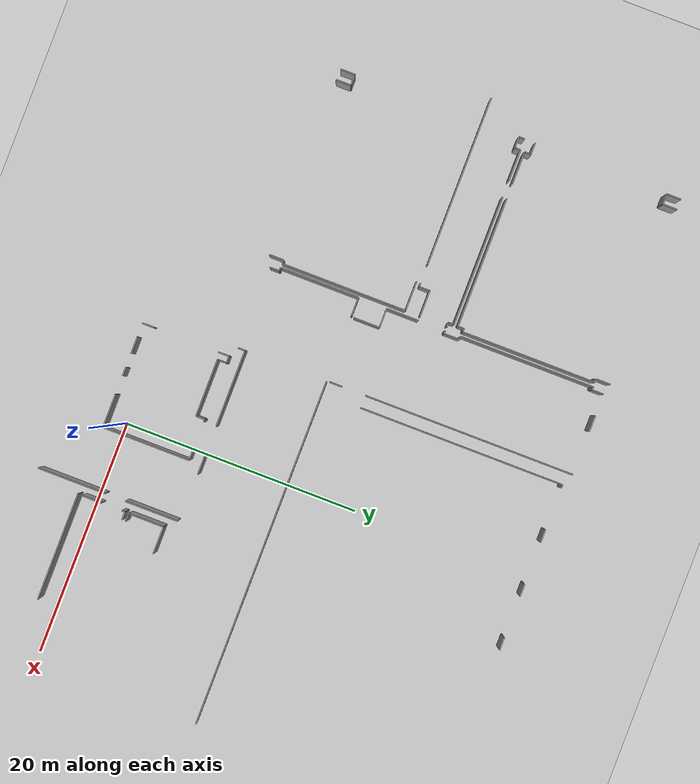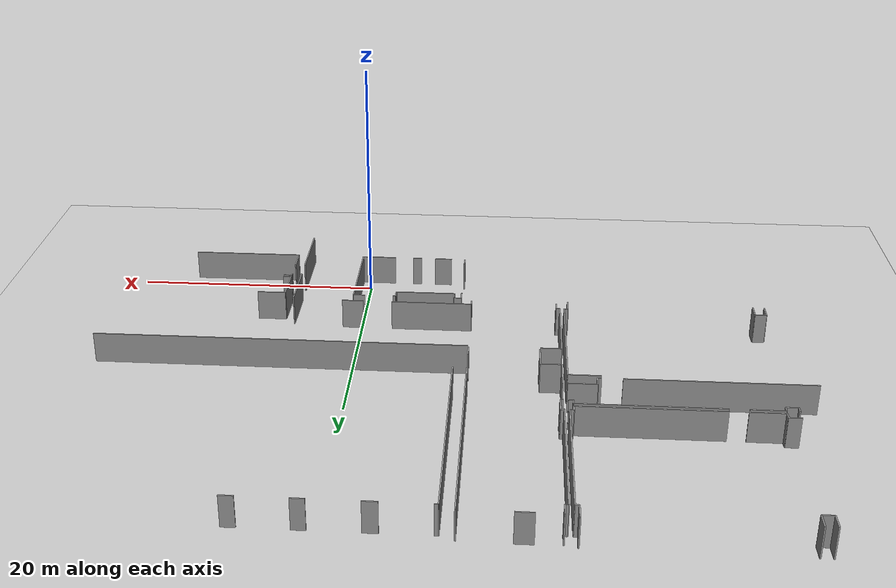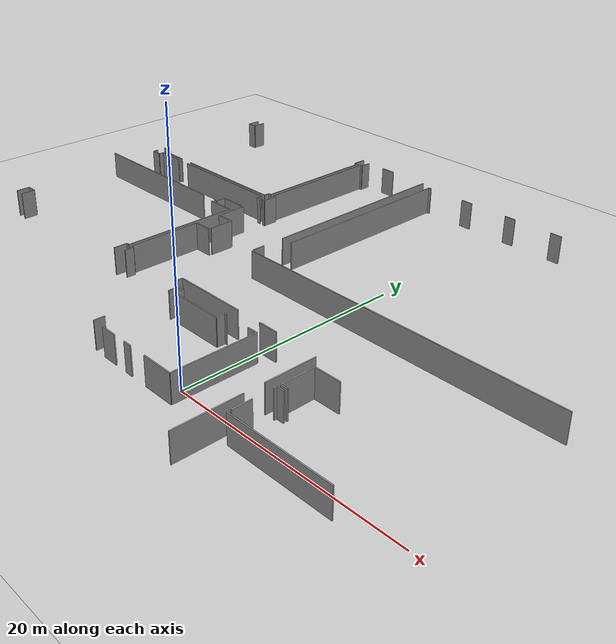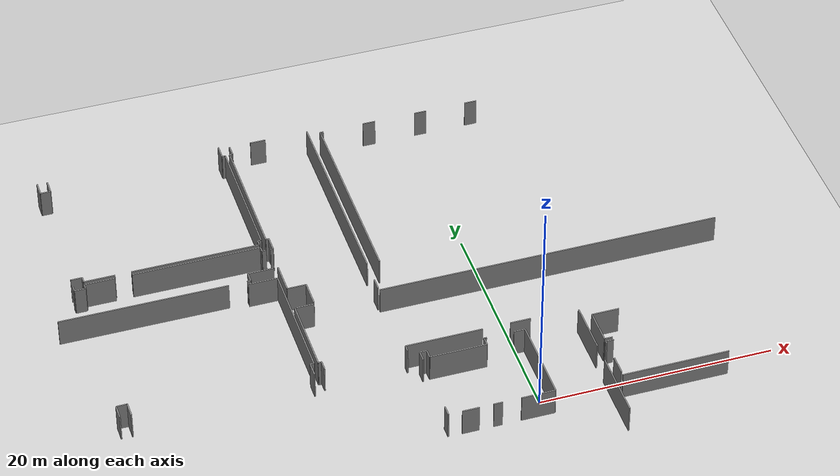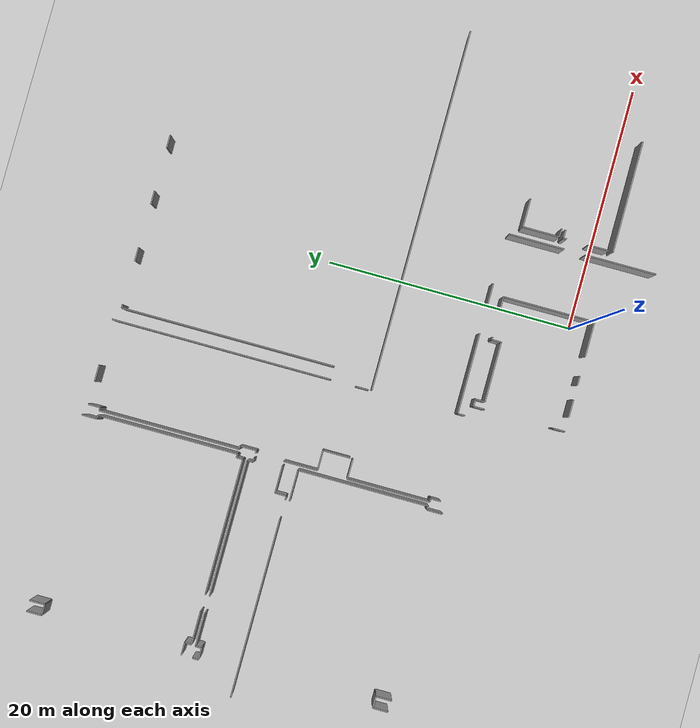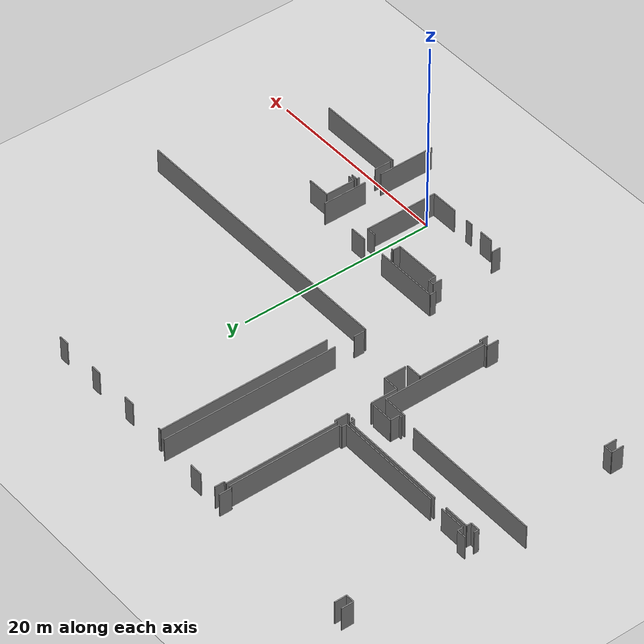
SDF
<sdf version="1.6">
 <world name="default">
  <model name="ground_plane">
   <static>1</static>
   <link name="link">
    <collision name="collision">
     <geometry><plane><normal>0 0 1</normal><size>100 100</size></plane></geometry>
     <surface><friction><ode><mu>100</mu><mu2>50</mu2></ode></friction></surface>
    </collision>
    <visual name="visual">
     <cast_shadows>0</cast_shadows>
     <geometry><plane><normal>0 0 1</normal><size>100 100</size></plane></geometry>
     <material>
      <script><uri>file://media/materials/scripts/gazebo.material</uri><name>Gazebo/Grey</name></script>
     </material>
    </visual>
   </link>
  </model>
  <model name="0510035741_A_40_1_104">
   <static>1</static>
   <link name="Wall_119">
    <collision name="Wall_119_Collision">
     <geometry><box><size>0.495551844349 0.1 2.5</size></box></geometry>
     <pose>0.247775922175 0 1.25 0 0 0</pose>
    </collision>
    <visual name="Wall_119_Visual">
     <pose>0.247775922175 0 1.25 0 0 0</pose>
     <geometry><box><size>0.495551844349 0.1 2.5</size></box></geometry>
     <material>
      <script><uri>file://media/materials/scripts/gazebo.material</uri><name>Gazebo/Grey</name></script>
      <ambient>1 1 1 1</ambient>
     </material>
    </visual>
    <pose>60.9208729942 -27.5969799531 0 0 0 -1.57079632679</pose>
   </link>
   <link name="Wall_120">
    <collision name="Wall_120_Collision">
     <geometry><box><size>0.94639988316 0.1 2.5</size></box></geometry>
     <pose>0.47319994158 0 1.25 0 0 0</pose>
    </collision>
    <visual name="Wall_120_Visual">
     <pose>0.47319994158 0 1.25 0 0 0</pose>
     <geometry><box><size>0.94639988316 0.1 2.5</size></box></geometry>
     <material>
      <script><uri>file://media/materials/scripts/gazebo.material</uri><name>Gazebo/Grey</name></script>
      <ambient>1 1 1 1</ambient>
     </material>
    </visual>
    <pose>60.9208729942 -28.0925317975 0 0 0 0.0</pose>
   </link>
   <link name="Wall_121">
    <collision name="Wall_121_Collision">
     <geometry><box><size>0.489963868657 0.1 2.5</size></box></geometry>
     <pose>0.244981934329 0 1.25 0 0 0</pose>
    </collision>
    <visual name="Wall_121_Visual">
     <pose>0.244981934329 0 1.25 0 0 0</pose>
     <geometry><box><size>0.489963868657 0.1 2.5</size></box></geometry>
     <material>
      <script><uri>file://media/materials/scripts/gazebo.material</uri><name>Gazebo/Grey</name></script>
      <ambient>1 1 1 1</ambient>
     </material>
    </visual>
    <pose>61.8672728774 -28.0925317975 0 0 0 1.57079632679</pose>
   </link>
   <link name="Wall_122">
    <collision name="Wall_122_Collision">
     <geometry><box><size>2.58240676653 0.1 2.5</size></box></geometry>
     <pose>1.29120338327 0 1.25 0 0 0</pose>
    </collision>
    <visual name="Wall_122_Visual">
     <pose>1.29120338327 0 1.25 0 0 0</pose>
     <geometry><box><size>2.58240676653 0.1 2.5</size></box></geometry>
     <material>
      <script><uri>file://media/materials/scripts/gazebo.material</uri><name>Gazebo/Grey</name></script>
      <ambient>1 1 1 1</ambient>
     </material>
    </visual>
    <pose>61.8672728774 -27.6025679288 0 0 0 0.0</pose>
   </link>
   <link name="Wall_123">
    <collision name="Wall_123_Collision">
     <geometry><box><size>11.022536052 0.1 2.5</size></box></geometry>
     <pose>5.51126802598 0 1.25 0 0 0</pose>
    </collision>
    <visual name="Wall_123_Visual">
     <pose>5.51126802598 0 1.25 0 0 0</pose>
     <geometry><box><size>11.022536052 0.1 2.5</size></box></geometry>
     <material>
      <script><uri>file://media/materials/scripts/gazebo.material</uri><name>Gazebo/Grey</name></script>
      <ambient>1 1 1 1</ambient>
     </material>
    </visual>
    <pose>65.914491272 -27.6025679288 0 0 0 0.0</pose>
   </link>
   <link name="Wall_124">
    <collision name="Wall_124_Collision">
     <geometry><box><size>0.47319994158 0.1 2.5</size></box></geometry>
     <pose>0.23659997079 0 1.25 0 0 0</pose>
    </collision>
    <visual name="Wall_124_Visual">
     <pose>0.23659997079 0 1.25 0 0 0</pose>
     <geometry><box><size>0.47319994158 0.1 2.5</size></box></geometry>
     <material>
      <script><uri>file://media/materials/scripts/gazebo.material</uri><name>Gazebo/Grey</name></script>
      <ambient>1 1 1 1</ambient>
     </material>
    </visual>
    <pose>76.9370273239 -27.6025679288 0 0 0 -1.57079632679</pose>
   </link>
   <link name="Wall_125">
    <collision name="Wall_125_Collision">
     <geometry><box><size>0.360932429944 0.1 2.5</size></box></geometry>
     <pose>0.180466214972 0 1.25 0 0 0</pose>
    </collision>
    <visual name="Wall_125_Visual">
     <pose>0.180466214972 0 1.25 0 0 0</pose>
     <geometry><box><size>0.360932429944 0.1 2.5</size></box></geometry>
     <material>
      <script><uri>file://media/materials/scripts/gazebo.material</uri><name>Gazebo/Grey</name></script>
      <ambient>1 1 1 1</ambient>
     </material>
    </visual>
    <pose>76.9370273239 -28.0757678704 0 0 0 0.0</pose>
   </link>
   <link name="Wall_126">
    <collision name="Wall_126_Collision">
     <geometry><box><size>2.22198233438 0.1 2.5</size></box></geometry>
     <pose>1.11099116719 0 1.25 0 0 0</pose>
    </collision>
    <visual name="Wall_126_Visual">
     <pose>1.11099116719 0 1.25 0 0 0</pose>
     <geometry><box><size>2.22198233438 0.1 2.5</size></box></geometry>
     <material>
      <script><uri>file://media/materials/scripts/gazebo.material</uri><name>Gazebo/Grey</name></script>
      <ambient>1 1 1 1</ambient>
     </material>
    </visual>
    <pose>77.2979597539 -30.3993497628 0 0 0 3.14159265359</pose>
   </link>
   <link name="Wall_127">
    <collision name="Wall_127_Collision">
     <geometry><box><size>0.914904020168 0.1 2.5</size></box></geometry>
     <pose>0.457452010084 0 1.25 0 0 0</pose>
    </collision>
    <visual name="Wall_127_Visual">
     <pose>0.457452010084 0 1.25 0 0 0</pose>
     <geometry><box><size>0.914904020168 0.1 2.5</size></box></geometry>
     <material>
      <script><uri>file://media/materials/scripts/gazebo.material</uri><name>Gazebo/Grey</name></script>
      <ambient>1 1 1 1</ambient>
     </material>
    </visual>
    <pose>75.0759774195 -30.3993497628 0 0 0 -1.57079632679</pose>
   </link>
   <link name="Wall_128">
    <collision name="Wall_128_Collision">
     <geometry><box><size>0.319530610042 0.1 2.5</size></box></geometry>
     <pose>0.159765305021 0 1.25 0 0 0</pose>
    </collision>
    <visual name="Wall_128_Visual">
     <pose>0.159765305021 0 1.25 0 0 0</pose>
     <geometry><box><size>0.319530610042 0.1 2.5</size></box></geometry>
     <material>
      <script><uri>file://media/materials/scripts/gazebo.material</uri><name>Gazebo/Grey</name></script>
      <ambient>1 1 1 1</ambient>
     </material>
    </visual>
    <pose>75.0759774195 -31.314253783 0 0 0 3.14159265359</pose>
   </link>
   <link name="Wall_129">
    <collision name="Wall_129_Collision">
     <geometry><box><size>14.4121513071 0.1 2.5</size></box></geometry>
     <pose>7.20607565357 0 1.25 0 0 0</pose>
    </collision>
    <visual name="Wall_129_Visual">
     <pose>7.20607565357 0 1.25 0 0 0</pose>
     <geometry><box><size>14.4121513071 0.1 2.5</size></box></geometry>
     <material>
      <script><uri>file://media/materials/scripts/gazebo.material</uri><name>Gazebo/Grey</name></script>
      <ambient>1 1 1 1</ambient>
     </material>
    </visual>
    <pose>73.1793676698 -31.314253783 0 0 0 3.14159265359</pose>
   </link>
   <link name="Wall_141">
    <collision name="Wall_141_Collision">
     <geometry><box><size>2.51306506817 0.1 2.5</size></box></geometry>
     <pose>1.25653253408 0 1.25 0 0 0</pose>
    </collision>
    <visual name="Wall_141_Visual">
     <pose>1.25653253408 0 1.25 0 0 0</pose>
     <geometry><box><size>2.51306506817 0.1 2.5</size></box></geometry>
     <material>
      <script><uri>file://media/materials/scripts/gazebo.material</uri><name>Gazebo/Grey</name></script>
      <ambient>1 1 1 1</ambient>
     </material>
    </visual>
    <pose>74.7589867984 -31.6589302837 0 0 0 0.0</pose>
   </link>
   <link name="Wall_142">
    <collision name="Wall_142_Collision">
     <geometry><box><size>10.6336637436 0.1 2.5</size></box></geometry>
     <pose>5.31683187178 0 1.25 0 0 0</pose>
    </collision>
    <visual name="Wall_142_Visual">
     <pose>5.31683187178 0 1.25 0 0 0</pose>
     <geometry><box><size>10.6336637436 0.1 2.5</size></box></geometry>
     <material>
      <script><uri>file://media/materials/scripts/gazebo.material</uri><name>Gazebo/Grey</name></script>
      <ambient>1 1 1 1</ambient>
     </material>
    </visual>
    <pose>77.2720518666 -31.6589302837 0 0 0 -1.57079632679</pose>
   </link>
   <link name="Wall_143">
    <collision name="Wall_143_Collision">
     <geometry><box><size>0.308100659762 0.1 2.5</size></box></geometry>
     <pose>0.154050329881 0 1.25 0 0 0</pose>
    </collision>
    <visual name="Wall_143_Visual">
     <pose>0.154050329881 0 1.25 0 0 0</pose>
     <geometry><box><size>0.308100659762 0.1 2.5</size></box></geometry>
     <material>
      <script><uri>file://media/materials/scripts/gazebo.material</uri><name>Gazebo/Grey</name></script>
      <ambient>1 1 1 1</ambient>
     </material>
    </visual>
    <pose>77.2720518666 -42.2925940272 0 0 0 3.14159265359</pose>
   </link>
   <link name="Wall_144">
    <collision name="Wall_144_Collision">
     <geometry><box><size>1.234942628 0.1 2.5</size></box></geometry>
     <pose>0.617471314 0 1.25 0 0 0</pose>
    </collision>
    <visual name="Wall_144_Visual">
     <pose>0.617471314 0 1.25 0 0 0</pose>
     <geometry><box><size>1.234942628 0.1 2.5</size></box></geometry>
     <material>
      <script><uri>file://media/materials/scripts/gazebo.material</uri><name>Gazebo/Grey</name></script>
      <ambient>1 1 1 1</ambient>
     </material>
    </visual>
    <pose>76.9639512068 -42.2925940272 0 0 0 -1.57079632679</pose>
   </link>
   <link name="Wall_145">
    <collision name="Wall_145_Collision">
     <geometry><box><size>1.27786844127 0.1 2.5</size></box></geometry>
     <pose>0.638934220636 0 1.25 0 0 0</pose>
    </collision>
    <visual name="Wall_145_Visual">
     <pose>0.638934220636 0 1.25 0 0 0</pose>
     <geometry><box><size>1.27786844127 0.1 2.5</size></box></geometry>
     <material>
      <script><uri>file://media/materials/scripts/gazebo.material</uri><name>Gazebo/Grey</name></script>
      <ambient>1 1 1 1</ambient>
     </material>
    </visual>
    <pose>61.8672728774 -43.5275366552 0 0 0 1.57079632679</pose>
   </link>
   <link name="Wall_146">
    <collision name="Wall_146_Collision">
     <geometry><box><size>0.92150799144 0.1 2.5</size></box></geometry>
     <pose>0.46075399572 0 1.25 0 0 0</pose>
    </collision>
    <visual name="Wall_146_Visual">
     <pose>0.46075399572 0 1.25 0 0 0</pose>
     <geometry><box><size>0.92150799144 0.1 2.5</size></box></geometry>
     <material>
      <script><uri>file://media/materials/scripts/gazebo.material</uri><name>Gazebo/Grey</name></script>
      <ambient>1 1 1 1</ambient>
     </material>
    </visual>
    <pose>61.8672728774 -42.2496682139 0 0 0 3.14159265359</pose>
   </link>
   <link name="Wall_147">
    <collision name="Wall_147_Collision">
     <geometry><box><size>1.23722861806 0.1 2.5</size></box></geometry>
     <pose>0.618614309028 0 1.25 0 0 0</pose>
    </collision>
    <visual name="Wall_147_Visual">
     <pose>0.618614309028 0 1.25 0 0 0</pose>
     <geometry><box><size>1.23722861806 0.1 2.5</size></box></geometry>
     <material>
      <script><uri>file://media/materials/scripts/gazebo.material</uri><name>Gazebo/Grey</name></script>
      <ambient>1 1 1 1</ambient>
     </material>
    </visual>
    <pose>60.9457648859 -42.2496682139 0 0 0 -1.57079632679</pose>
   </link>
   <link name="Wall_165">
    <collision name="Wall_165_Collision">
     <geometry><box><size>1.2298626501 0.1 2.5</size></box></geometry>
     <pose>0.614931325049 0 1.25 0 0 0</pose>
    </collision>
    <visual name="Wall_165_Visual">
     <pose>0.614931325049 0 1.25 0 0 0</pose>
     <geometry><box><size>1.2298626501 0.1 2.5</size></box></geometry>
     <material>
      <script><uri>file://media/materials/scripts/gazebo.material</uri><name>Gazebo/Grey</name></script>
      <ambient>1 1 1 1</ambient>
     </material>
    </visual>
    <pose>60.9805627346 -14.090334707 0 0 0 -1.57079632679</pose>
   </link>
   <link name="Wall_166">
    <collision name="Wall_166_Collision">
     <geometry><box><size>0.878582178168 0.1 2.5</size></box></geometry>
     <pose>0.439291089084 0 1.25 0 0 0</pose>
    </collision>
    <visual name="Wall_166_Visual">
     <pose>0.439291089084 0 1.25 0 0 0</pose>
     <geometry><box><size>0.878582178168 0.1 2.5</size></box></geometry>
     <material>
      <script><uri>file://media/materials/scripts/gazebo.material</uri><name>Gazebo/Grey</name></script>
      <ambient>1 1 1 1</ambient>
     </material>
    </visual>
    <pose>60.9805627346 -15.3201973571 0 0 0 0.0</pose>
   </link>
   <link name="Wall_167">
    <collision name="Wall_167_Collision">
     <geometry><box><size>1.2298626501 0.1 2.5</size></box></geometry>
     <pose>0.614931325049 0 1.25 0 0 0</pose>
    </collision>
    <visual name="Wall_167_Visual">
     <pose>0.614931325049 0 1.25 0 0 0</pose>
     <geometry><box><size>1.2298626501 0.1 2.5</size></box></geometry>
     <material>
      <script><uri>file://media/materials/scripts/gazebo.material</uri><name>Gazebo/Grey</name></script>
      <ambient>1 1 1 1</ambient>
     </material>
    </visual>
    <pose>61.8591449127 -15.3201973571 0 0 0 1.57079632679</pose>
   </link>
   <link name="Wall_168">
    <collision name="Wall_168_Collision">
     <geometry><box><size>1.24154659927 0.1 2.5</size></box></geometry>
     <pose>0.620773299636 0 1.25 0 0 0</pose>
    </collision>
    <visual name="Wall_168_Visual">
     <pose>0.620773299636 0 1.25 0 0 0</pose>
     <geometry><box><size>1.24154659927 0.1 2.5</size></box></geometry>
     <material>
      <script><uri>file://media/materials/scripts/gazebo.material</uri><name>Gazebo/Grey</name></script>
      <ambient>1 1 1 1</ambient>
     </material>
    </visual>
    <pose>76.9487112731 -14.090334707 0 0 0 -1.57079632679</pose>
   </link>
   <link name="Wall_169">
    <collision name="Wall_169_Collision">
     <geometry><box><size>0.288796743734 0.1 2.5</size></box></geometry>
     <pose>0.144398371867 0 1.25 0 0 0</pose>
    </collision>
    <visual name="Wall_169_Visual">
     <pose>0.144398371867 0 1.25 0 0 0</pose>
     <geometry><box><size>0.288796743734 0.1 2.5</size></box></geometry>
     <material>
      <script><uri>file://media/materials/scripts/gazebo.material</uri><name>Gazebo/Grey</name></script>
      <ambient>1 1 1 1</ambient>
     </material>
    </visual>
    <pose>76.9487112731 -15.3318813063 0 0 0 0.0</pose>
   </link>
   <link name="Wall_170">
    <collision name="Wall_170_Collision">
     <geometry><box><size>11.4015024035 0.1 2.5</size></box></geometry>
     <pose>5.70075120173 0 1.25 0 0 0</pose>
    </collision>
    <visual name="Wall_170_Visual">
     <pose>5.70075120173 0 1.25 0 0 0</pose>
     <geometry><box><size>11.4015024035 0.1 2.5</size></box></geometry>
     <material>
      <script><uri>file://media/materials/scripts/gazebo.material</uri><name>Gazebo/Grey</name></script>
      <ambient>1 1 1 1</ambient>
     </material>
    </visual>
    <pose>77.2375080168 -15.3318813063 0 0 0 -1.57079632679</pose>
   </link>
   <link name="Wall_171">
    <collision name="Wall_171_Collision">
     <geometry><box><size>0.291336732685 0.1 2.5</size></box></geometry>
     <pose>0.145668366343 0 1.25 0 0 0</pose>
    </collision>
    <visual name="Wall_171_Visual">
     <pose>0.145668366343 0 1.25 0 0 0</pose>
     <geometry><box><size>0.291336732685 0.1 2.5</size></box></geometry>
     <material>
      <script><uri>file://media/materials/scripts/gazebo.material</uri><name>Gazebo/Grey</name></script>
      <ambient>1 1 1 1</ambient>
     </material>
    </visual>
    <pose>77.2375080168 -26.7333837098 0 0 0 3.14159265359</pose>
   </link>
   <link name="Wall_172">
    <collision name="Wall_172_Collision">
     <geometry><box><size>0.515617757063 0.1 2.5</size></box></geometry>
     <pose>0.257808878531 0 1.25 0 0 0</pose>
    </collision>
    <visual name="Wall_172_Visual">
     <pose>0.257808878531 0 1.25 0 0 0</pose>
     <geometry><box><size>0.515617757063 0.1 2.5</size></box></geometry>
     <material>
      <script><uri>file://media/materials/scripts/gazebo.material</uri><name>Gazebo/Grey</name></script>
      <ambient>1 1 1 1</ambient>
     </material>
    </visual>
    <pose>76.9461712842 -26.7333837098 0 0 0 -1.57079632679</pose>
   </link>
   <link name="Wall_173">
    <collision name="Wall_173_Collision">
     <geometry><box><size>11.0019621415 0.1 2.5</size></box></geometry>
     <pose>5.50098107073 0 1.25 0 0 0</pose>
    </collision>
    <visual name="Wall_173_Visual">
     <pose>5.50098107073 0 1.25 0 0 0</pose>
     <geometry><box><size>11.0019621415 0.1 2.5</size></box></geometry>
     <material>
      <script><uri>file://media/materials/scripts/gazebo.material</uri><name>Gazebo/Grey</name></script>
      <ambient>1 1 1 1</ambient>
     </material>
    </visual>
    <pose>76.9461712842 -27.2490014668 0 0 0 3.14159265359</pose>
   </link>
   <link name="Wall_174">
    <collision name="Wall_174_Collision">
     <geometry><box><size>2.65733644059 0.1 2.5</size></box></geometry>
     <pose>1.32866822029 0 1.25 0 0 0</pose>
    </collision>
    <visual name="Wall_174_Visual">
     <pose>1.32866822029 0 1.25 0 0 0</pose>
     <geometry><box><size>2.65733644059 0.1 2.5</size></box></geometry>
     <material>
      <script><uri>file://media/materials/scripts/gazebo.material</uri><name>Gazebo/Grey</name></script>
      <ambient>1 1 1 1</ambient>
     </material>
    </visual>
    <pose>64.5604231622 -27.2490014668 0 0 0 3.14159265359</pose>
   </link>
   <link name="Wall_175">
    <collision name="Wall_175_Collision">
     <geometry><box><size>0.541525644363 0.1 2.5</size></box></geometry>
     <pose>0.270762822182 0 1.25 0 0 0</pose>
    </collision>
    <visual name="Wall_175_Visual">
     <pose>0.270762822182 0 1.25 0 0 0</pose>
     <geometry><box><size>0.541525644363 0.1 2.5</size></box></geometry>
     <material>
      <script><uri>file://media/materials/scripts/gazebo.material</uri><name>Gazebo/Grey</name></script>
      <ambient>1 1 1 1</ambient>
     </material>
    </visual>
    <pose>61.9030867216 -27.2490014668 0 0 0 1.57079632679</pose>
   </link>
   <link name="Wall_176">
    <collision name="Wall_176_Collision">
     <geometry><box><size>0.988309700853 0.1 2.5</size></box></geometry>
     <pose>0.494154850426 0 1.25 0 0 0</pose>
    </collision>
    <visual name="Wall_176_Visual">
     <pose>0.494154850426 0 1.25 0 0 0</pose>
     <geometry><box><size>0.988309700853 0.1 2.5</size></box></geometry>
     <material>
      <script><uri>file://media/materials/scripts/gazebo.material</uri><name>Gazebo/Grey</name></script>
      <ambient>1 1 1 1</ambient>
     </material>
    </visual>
    <pose>61.9030867216 -26.7074758225 0 0 0 3.14159265359</pose>
   </link>
   <link name="Wall_180">
    <collision name="Wall_180_Collision">
     <geometry><box><size>2.22122033769 0.1 2.5</size></box></geometry>
     <pose>1.11061016885 0 1.25 0 0 0</pose>
    </collision>
    <visual name="Wall_180_Visual">
     <pose>1.11061016885 0 1.25 0 0 0</pose>
     <geometry><box><size>2.22122033769 0.1 2.5</size></box></geometry>
     <material>
      <script><uri>file://media/materials/scripts/gazebo.material</uri><name>Gazebo/Grey</name></script>
      <ambient>1 1 1 1</ambient>
     </material>
    </visual>
    <pose>79.2918510804 -35.3543602085 0 0 0 1.57079632679</pose>
   </link>
   <link name="Wall_181">
    <collision name="Wall_181_Collision">
     <geometry><box><size>1.63651488116 0.1 2.5</size></box></geometry>
     <pose>0.81825744058 0 1.25 0 0 0</pose>
    </collision>
    <visual name="Wall_181_Visual">
     <pose>0.81825744058 0 1.25 0 0 0</pose>
     <geometry><box><size>1.63651488116 0.1 2.5</size></box></geometry>
     <material>
      <script><uri>file://media/materials/scripts/gazebo.material</uri><name>Gazebo/Grey</name></script>
      <ambient>1 1 1 1</ambient>
     </material>
    </visual>
    <pose>79.2918510804 -33.1331398708 0 0 0 3.14159265359</pose>
   </link>
   <link name="Wall_182">
    <collision name="Wall_182_Collision">
     <geometry><box><size>2.73887008592 0.1 2.5</size></box></geometry>
     <pose>1.36943504296 0 1.25 0 0 0</pose>
    </collision>
    <visual name="Wall_182_Visual">
     <pose>1.36943504296 0 1.25 0 0 0</pose>
     <geometry><box><size>2.73887008592 0.1 2.5</size></box></geometry>
     <material>
      <script><uri>file://media/materials/scripts/gazebo.material</uri><name>Gazebo/Grey</name></script>
      <ambient>1 1 1 1</ambient>
     </material>
    </visual>
    <pose>77.6553361993 -33.1331398708 0 0 0 1.57079632679</pose>
   </link>
   <link name="Wall_183">
    <collision name="Wall_183_Collision">
     <geometry><box><size>0.236218972447 0.1 2.5</size></box></geometry>
     <pose>0.118109486224 0 1.25 0 0 0</pose>
    </collision>
    <visual name="Wall_183_Visual">
     <pose>0.118109486224 0 1.25 0 0 0</pose>
     <geometry><box><size>0.236218972447 0.1 2.5</size></box></geometry>
     <material>
      <script><uri>file://media/materials/scripts/gazebo.material</uri><name>Gazebo/Grey</name></script>
      <ambient>1 1 1 1</ambient>
     </material>
    </visual>
    <pose>77.6553361993 -28.0993897677 0 0 0 0.0</pose>
   </link>
   <link name="Wall_184">
    <collision name="Wall_184_Collision">
     <geometry><box><size>1.34441615179 0.1 2.5</size></box></geometry>
     <pose>0.672208075895 0 1.25 0 0 0</pose>
    </collision>
    <visual name="Wall_184_Visual">
     <pose>0.672208075895 0 1.25 0 0 0</pose>
     <geometry><box><size>1.34441615179 0.1 2.5</size></box></geometry>
     <material>
      <script><uri>file://media/materials/scripts/gazebo.material</uri><name>Gazebo/Grey</name></script>
      <ambient>1 1 1 1</ambient>
     </material>
    </visual>
    <pose>77.8915551717 -28.0993897677 0 0 0 1.57079632679</pose>
   </link>
   <link name="Wall_185">
    <collision name="Wall_185_Collision">
     <geometry><box><size>0.265936843175 0.1 2.5</size></box></geometry>
     <pose>0.132968421587 0 1.25 0 0 0</pose>
    </collision>
    <visual name="Wall_185_Visual">
     <pose>0.132968421587 0 1.25 0 0 0</pose>
     <geometry><box><size>0.265936843175 0.1 2.5</size></box></geometry>
     <material>
      <script><uri>file://media/materials/scripts/gazebo.material</uri><name>Gazebo/Grey</name></script>
      <ambient>1 1 1 1</ambient>
     </material>
    </visual>
    <pose>77.8915551717 -26.7549736159 0 0 0 3.14159265359</pose>
   </link>
   <link name="Wall_186">
    <collision name="Wall_186_Collision">
     <geometry><box><size>11.4324902687 0.1 2.5</size></box></geometry>
     <pose>5.71624513433 0 1.25 0 0 0</pose>
    </collision>
    <visual name="Wall_186_Visual">
     <pose>5.71624513433 0 1.25 0 0 0</pose>
     <geometry><box><size>11.4324902687 0.1 2.5</size></box></geometry>
     <material>
      <script><uri>file://media/materials/scripts/gazebo.material</uri><name>Gazebo/Grey</name></script>
      <ambient>1 1 1 1</ambient>
     </material>
    </visual>
    <pose>77.6256183286 -26.7549736159 0 0 0 1.57079632679</pose>
   </link>
   <link name="Wall_187">
    <collision name="Wall_187_Collision">
     <geometry><box><size>0.256284885161 0.1 2.5</size></box></geometry>
     <pose>0.12814244258 0 1.25 0 0 0</pose>
    </collision>
    <visual name="Wall_187_Visual">
     <pose>0.12814244258 0 1.25 0 0 0</pose>
     <geometry><box><size>0.256284885161 0.1 2.5</size></box></geometry>
     <material>
      <script><uri>file://media/materials/scripts/gazebo.material</uri><name>Gazebo/Grey</name></script>
      <ambient>1 1 1 1</ambient>
     </material>
    </visual>
    <pose>77.6256183286 -15.3224833472 0 0 0 0.0</pose>
   </link>
   <link name="Wall_188">
    <collision name="Wall_188_Collision">
     <geometry><box><size>0.973831763832 0.1 2.5</size></box></geometry>
     <pose>0.486915881916 0 1.25 0 0 0</pose>
    </collision>
    <visual name="Wall_188_Visual">
     <pose>0.486915881916 0 1.25 0 0 0</pose>
     <geometry><box><size>0.973831763832 0.1 2.5</size></box></geometry>
     <material>
      <script><uri>file://media/materials/scripts/gazebo.material</uri><name>Gazebo/Grey</name></script>
      <ambient>1 1 1 1</ambient>
     </material>
    </visual>
    <pose>77.8819032137 -15.3224833472 0 0 0 1.57079632679</pose>
   </link>
   <link name="Wall_189">
    <collision name="Wall_189_Collision">
     <geometry><box><size>1.34822613522 0.1 2.5</size></box></geometry>
     <pose>0.674113067608 0 1.25 0 0 0</pose>
    </collision>
    <visual name="Wall_189_Visual">
     <pose>0.674113067608 0 1.25 0 0 0</pose>
     <geometry><box><size>1.34822613522 0.1 2.5</size></box></geometry>
     <material>
      <script><uri>file://media/materials/scripts/gazebo.material</uri><name>Gazebo/Grey</name></script>
      <ambient>1 1 1 1</ambient>
     </material>
    </visual>
    <pose>79.7343171557 -14.3486515834 0 0 0 0.0</pose>
   </link>
   <link name="Wall_190">
    <collision name="Wall_190_Collision">
     <geometry><box><size>17.879998222 0.1 2.5</size></box></geometry>
     <pose>8.939999111 0 1.25 0 0 0</pose>
    </collision>
    <visual name="Wall_190_Visual">
     <pose>8.939999111 0 1.25 0 0 0</pose>
     <geometry><box><size>17.879998222 0.1 2.5</size></box></geometry>
     <material>
      <script><uri>file://media/materials/scripts/gazebo.material</uri><name>Gazebo/Grey</name></script>
      <ambient>1 1 1 1</ambient>
     </material>
    </visual>
    <pose>84.8153110534 -14.3486515834 0 0 0 -1.57079632679</pose>
   </link>
   <link name="Wall_191">
    <collision name="Wall_191_Collision">
     <geometry><box><size>1.07466932519 0.1 2.5</size></box></geometry>
     <pose>0.537334662594 0 1.25 0 0 0</pose>
    </collision>
    <visual name="Wall_191_Visual">
     <pose>0.537334662594 0 1.25 0 0 0</pose>
     <geometry><box><size>1.07466932519 0.1 2.5</size></box></geometry>
     <material>
      <script><uri>file://media/materials/scripts/gazebo.material</uri><name>Gazebo/Grey</name></script>
      <ambient>1 1 1 1</ambient>
     </material>
    </visual>
    <pose>84.8153110534 -34.2621649596 0 0 0 -1.57079632679</pose>
   </link>
   <link name="Wall_192">
    <collision name="Wall_192_Collision">
     <geometry><box><size>17.3948603324 0.1 2.5</size></box></geometry>
     <pose>8.69743016618 0 1.25 0 0 0</pose>
    </collision>
    <visual name="Wall_192_Visual">
     <pose>8.69743016618 0 1.25 0 0 0</pose>
     <geometry><box><size>17.3948603324 0.1 2.5</size></box></geometry>
     <material>
      <script><uri>file://media/materials/scripts/gazebo.material</uri><name>Gazebo/Grey</name></script>
      <ambient>1 1 1 1</ambient>
     </material>
    </visual>
    <pose>85.8887103841 -32.2238238264 0 0 0 1.57079632679</pose>
   </link>
   <link name="Wall_193">
    <collision name="Wall_193_Collision">
     <geometry><box><size>0.283970764727 0.1 2.5</size></box></geometry>
     <pose>0.141985382364 0 1.25 0 0 0</pose>
    </collision>
    <visual name="Wall_193_Visual">
     <pose>0.141985382364 0 1.25 0 0 0</pose>
     <geometry><box><size>0.283970764727 0.1 2.5</size></box></geometry>
     <material>
      <script><uri>file://media/materials/scripts/gazebo.material</uri><name>Gazebo/Grey</name></script>
      <ambient>1 1 1 1</ambient>
     </material>
    </visual>
    <pose>85.8887103841 -14.828963494 0 0 0 0.0</pose>
   </link>
   <link name="Wall_194">
    <collision name="Wall_194_Collision">
     <geometry><box><size>1.10210120586 0.1 2.5</size></box></geometry>
     <pose>0.55105060293 0 1.25 0 0 0</pose>
    </collision>
    <visual name="Wall_194_Visual">
     <pose>0.55105060293 0 1.25 0 0 0</pose>
     <geometry><box><size>1.10210120586 0.1 2.5</size></box></geometry>
     <material>
      <script><uri>file://media/materials/scripts/gazebo.material</uri><name>Gazebo/Grey</name></script>
      <ambient>1 1 1 1</ambient>
     </material>
    </visual>
    <pose>89.7466996019 -14.828963494 0 0 0 0.0</pose>
   </link>
   <link name="Wall_195">
    <collision name="Wall_195_Collision">
     <geometry><box><size>1.03529949645 0.1 2.5</size></box></geometry>
     <pose>0.517649748224 0 1.25 0 0 0</pose>
    </collision>
    <visual name="Wall_195_Visual">
     <pose>0.517649748224 0 1.25 0 0 0</pose>
     <geometry><box><size>1.03529949645 0.1 2.5</size></box></geometry>
     <material>
      <script><uri>file://media/materials/scripts/gazebo.material</uri><name>Gazebo/Grey</name></script>
      <ambient>1 1 1 1</ambient>
     </material>
    </visual>
    <pose>94.4563471149 -14.828963494 0 0 0 0.0</pose>
   </link>
   <link name="Wall_196">
    <collision name="Wall_196_Collision">
     <geometry><box><size>1.05231742242 0.1 2.5</size></box></geometry>
     <pose>0.52615871121 0 1.25 0 0 0</pose>
    </collision>
    <visual name="Wall_196_Visual">
     <pose>0.52615871121 0 1.25 0 0 0</pose>
     <geometry><box><size>1.05231742242 0.1 2.5</size></box></geometry>
     <material>
      <script><uri>file://media/materials/scripts/gazebo.material</uri><name>Gazebo/Grey</name></script>
      <ambient>1 1 1 1</ambient>
     </material>
    </visual>
    <pose>99.0656650644 -14.828963494 0 0 0 0.0</pose>
   </link>
   <link name="Wall_202">
    <collision name="Wall_202_Collision">
     <geometry><box><size>0.81254246544 0.1 2.5</size></box></geometry>
     <pose>0.40627123272 0 1.25 0 0 0</pose>
    </collision>
    <visual name="Wall_202_Visual">
     <pose>0.40627123272 0 1.25 0 0 0</pose>
     <geometry><box><size>0.81254246544 0.1 2.5</size></box></geometry>
     <material>
      <script><uri>file://media/materials/scripts/gazebo.material</uri><name>Gazebo/Grey</name></script>
      <ambient>1 1 1 1</ambient>
     </material>
    </visual>
    <pose>77.9024771242 -43.1241864098 0 0 0 1.57079632679</pose>
   </link>
   <link name="Wall_203">
    <collision name="Wall_203_Collision">
     <geometry><box><size>0.285494758098 0.1 2.5</size></box></geometry>
     <pose>0.142747379049 0 1.25 0 0 0</pose>
    </collision>
    <visual name="Wall_203_Visual">
     <pose>0.142747379049 0 1.25 0 0 0</pose>
     <geometry><box><size>0.285494758098 0.1 2.5</size></box></geometry>
     <material>
      <script><uri>file://media/materials/scripts/gazebo.material</uri><name>Gazebo/Grey</name></script>
      <ambient>1 1 1 1</ambient>
     </material>
    </visual>
    <pose>77.9024771242 -42.3116439443 0 0 0 3.14159265359</pose>
   </link>
   <link name="Wall_204">
    <collision name="Wall_204_Collision">
     <geometry><box><size>6.73147871807 0.1 2.5</size></box></geometry>
     <pose>3.36573935903 0 1.25 0 0 0</pose>
    </collision>
    <visual name="Wall_204_Visual">
     <pose>3.36573935903 0 1.25 0 0 0</pose>
     <geometry><box><size>6.73147871807 0.1 2.5</size></box></geometry>
     <material>
      <script><uri>file://media/materials/scripts/gazebo.material</uri><name>Gazebo/Grey</name></script>
      <ambient>1 1 1 1</ambient>
     </material>
    </visual>
    <pose>77.6169823661 -42.3116439443 0 0 0 1.57079632679</pose>
   </link>
   <link name="Wall_205">
    <collision name="Wall_205_Collision">
     <geometry><box><size>1.63600688337 0.1 2.5</size></box></geometry>
     <pose>0.818003441685 0 1.25 0 0 0</pose>
    </collision>
    <visual name="Wall_205_Visual">
     <pose>0.818003441685 0 1.25 0 0 0</pose>
     <geometry><box><size>1.63600688337 0.1 2.5</size></box></geometry>
     <material>
      <script><uri>file://media/materials/scripts/gazebo.material</uri><name>Gazebo/Grey</name></script>
      <ambient>1 1 1 1</ambient>
     </material>
    </visual>
    <pose>77.6169823661 -35.5801652263 0 0 0 0.0</pose>
   </link>
   <link name="Wall_206">
    <collision name="Wall_206_Collision">
     <geometry><box><size>29.5766473416 0.1 2.5</size></box></geometry>
     <pose>14.7883236708 0 1.25 0 0 0</pose>
    </collision>
    <visual name="Wall_206_Visual">
     <pose>14.7883236708 0 1.25 0 0 0</pose>
     <geometry><box><size>29.5766473416 0.1 2.5</size></box></geometry>
     <material>
      <script><uri>file://media/materials/scripts/gazebo.material</uri><name>Gazebo/Grey</name></script>
      <ambient>1 1 1 1</ambient>
     </material>
    </visual>
    <pose>84.8699208158 -35.5801652263 0 0 0 0.0</pose>
   </link>
   <link name="Wall_223">
    <collision name="Wall_223_Collision">
     <geometry><box><size>1.72846248119 0.1 2.5</size></box></geometry>
     <pose>0.864231240594 0 1.25 0 0 0</pose>
    </collision>
    <visual name="Wall_223_Visual">
     <pose>0.864231240594 0 1.25 0 0 0</pose>
     <geometry><box><size>1.72846248119 0.1 2.5</size></box></geometry>
     <material>
      <script><uri>file://media/materials/scripts/gazebo.material</uri><name>Gazebo/Grey</name></script>
      <ambient>1 1 1 1</ambient>
     </material>
    </visual>
    <pose>95.5609883097 -42.5999326903 0 0 0 3.14159265359</pose>
   </link>
   <link name="Wall_224">
    <collision name="Wall_224_Collision">
     <geometry><box><size>6.56841142741 0.1 2.5</size></box></geometry>
     <pose>3.28420571371 0 1.25 0 0 0</pose>
    </collision>
    <visual name="Wall_224_Visual">
     <pose>3.28420571371 0 1.25 0 0 0</pose>
     <geometry><box><size>6.56841142741 0.1 2.5</size></box></geometry>
     <material>
      <script><uri>file://media/materials/scripts/gazebo.material</uri><name>Gazebo/Grey</name></script>
      <ambient>1 1 1 1</ambient>
     </material>
    </visual>
    <pose>91.451032188 -42.5999326903 0 0 0 3.14159265359</pose>
   </link>
   <link name="Wall_225">
    <collision name="Wall_225_Collision">
     <geometry><box><size>0.595373410126 0.1 2.5</size></box></geometry>
     <pose>0.297686705063 0 1.25 0 0 0</pose>
    </collision>
    <visual name="Wall_225_Visual">
     <pose>0.297686705063 0 1.25 0 0 0</pose>
     <geometry><box><size>0.595373410126 0.1 2.5</size></box></geometry>
     <material>
      <script><uri>file://media/materials/scripts/gazebo.material</uri><name>Gazebo/Grey</name></script>
      <ambient>1 1 1 1</ambient>
     </material>
    </visual>
    <pose>84.8826207606 -42.5999326903 0 0 0 -1.57079632679</pose>
   </link>
   <link name="Wall_318">
    <collision name="Wall_318_Collision">
     <geometry><box><size>0.929381957188 0.1 2.5</size></box></geometry>
     <pose>0.464690978594 0 1.25 0 0 0</pose>
    </collision>
    <visual name="Wall_318_Visual">
     <pose>0.464690978594 0 1.25 0 0 0</pose>
     <geometry><box><size>0.929381957188 0.1 2.5</size></box></geometry>
     <material>
      <script><uri>file://media/materials/scripts/gazebo.material</uri><name>Gazebo/Grey</name></script>
      <ambient>1 1 1 1</ambient>
     </material>
    </visual>
    <pose>85.7660289178 -51.1081336796 0 0 0 1.57079632679</pose>
   </link>
   <link name="Wall_319">
    <collision name="Wall_319_Collision">
     <geometry><box><size>0.915158019063 0.1 2.5</size></box></geometry>
     <pose>0.457579009531 0 1.25 0 0 0</pose>
    </collision>
    <visual name="Wall_319_Visual">
     <pose>0.457579009531 0 1.25 0 0 0</pose>
     <geometry><box><size>0.915158019063 0.1 2.5</size></box></geometry>
     <material>
      <script><uri>file://media/materials/scripts/gazebo.material</uri><name>Gazebo/Grey</name></script>
      <ambient>1 1 1 1</ambient>
     </material>
    </visual>
    <pose>85.7660289178 -44.5587721693 0 0 0 1.57079632679</pose>
   </link>
   <link name="Wall_320">
    <collision name="Wall_320_Collision">
     <geometry><box><size>0.59410341565 0.1 2.5</size></box></geometry>
     <pose>0.297051707825 0 1.25 0 0 0</pose>
    </collision>
    <visual name="Wall_320_Visual">
     <pose>0.297051707825 0 1.25 0 0 0</pose>
     <geometry><box><size>0.59410341565 0.1 2.5</size></box></geometry>
     <material>
      <script><uri>file://media/materials/scripts/gazebo.material</uri><name>Gazebo/Grey</name></script>
      <ambient>1 1 1 1</ambient>
     </material>
    </visual>
    <pose>85.7660289178 -43.6436141503 0 0 0 0.0</pose>
   </link>
   <link name="Wall_321">
    <collision name="Wall_321_Collision">
     <geometry><box><size>0.769870651063 0.1 2.5</size></box></geometry>
     <pose>0.384935325531 0 1.25 0 0 0</pose>
    </collision>
    <visual name="Wall_321_Visual">
     <pose>0.384935325531 0 1.25 0 0 0</pose>
     <geometry><box><size>0.769870651063 0.1 2.5</size></box></geometry>
     <material>
      <script><uri>file://media/materials/scripts/gazebo.material</uri><name>Gazebo/Grey</name></script>
      <ambient>1 1 1 1</ambient>
     </material>
    </visual>
    <pose>86.3601323334 -43.6436141503 0 0 0 -1.57079632679</pose>
   </link>
   <link name="Wall_322">
    <collision name="Wall_322_Collision">
     <geometry><box><size>4.86484083794 0.1 2.5</size></box></geometry>
     <pose>2.43242041897 0 1.25 0 0 0</pose>
    </collision>
    <visual name="Wall_322_Visual">
     <pose>2.43242041897 0 1.25 0 0 0</pose>
     <geometry><box><size>4.86484083794 0.1 2.5</size></box></geometry>
     <material>
      <script><uri>file://media/materials/scripts/gazebo.material</uri><name>Gazebo/Grey</name></script>
      <ambient>1 1 1 1</ambient>
     </material>
    </visual>
    <pose>86.3601323334 -44.4134848013 0 0 0 0.0</pose>
   </link>
   <link name="Wall_323">
    <collision name="Wall_323_Collision">
     <geometry><box><size>0.755138715147 0.1 2.5</size></box></geometry>
     <pose>0.377569357573 0 1.25 0 0 0</pose>
    </collision>
    <visual name="Wall_323_Visual">
     <pose>0.377569357573 0 1.25 0 0 0</pose>
     <geometry><box><size>0.755138715147 0.1 2.5</size></box></geometry>
     <material>
      <script><uri>file://media/materials/scripts/gazebo.material</uri><name>Gazebo/Grey</name></script>
      <ambient>1 1 1 1</ambient>
     </material>
    </visual>
    <pose>91.2249731714 -44.4134848013 0 0 0 1.57079632679</pose>
   </link>
   <link name="Wall_324">
    <collision name="Wall_324_Collision">
     <geometry><box><size>0.217931052 0.1 2.5</size></box></geometry>
     <pose>0.108965526 0 1.25 0 0 0</pose>
    </collision>
    <visual name="Wall_324_Visual">
     <pose>0.108965526 0 1.25 0 0 0</pose>
     <geometry><box><size>0.217931052 0.1 2.5</size></box></geometry>
     <material>
      <script><uri>file://media/materials/scripts/gazebo.material</uri><name>Gazebo/Grey</name></script>
      <ambient>1 1 1 1</ambient>
     </material>
    </visual>
    <pose>91.2249731714 -43.6583460862 0 0 0 0.0</pose>
   </link>
   <link name="Wall_325">
    <collision name="Wall_325_Collision">
     <geometry><box><size>0.958845829021 0.1 2.5</size></box></geometry>
     <pose>0.47942291451 0 1.25 0 0 0</pose>
    </collision>
    <visual name="Wall_325_Visual">
     <pose>0.47942291451 0 1.25 0 0 0</pose>
     <geometry><box><size>0.958845829021 0.1 2.5</size></box></geometry>
     <material>
      <script><uri>file://media/materials/scripts/gazebo.material</uri><name>Gazebo/Grey</name></script>
      <ambient>1 1 1 1</ambient>
     </material>
    </visual>
    <pose>93.7814720506 -43.6583460862 0 0 0 0.0</pose>
   </link>
   <link name="Wall_326">
    <collision name="Wall_326_Collision">
     <geometry><box><size>7.4353096564 0.1 2.5</size></box></geometry>
     <pose>3.7176548282 0 1.25 0 0 0</pose>
    </collision>
    <visual name="Wall_326_Visual">
     <pose>3.7176548282 0 1.25 0 0 0</pose>
     <geometry><box><size>7.4353096564 0.1 2.5</size></box></geometry>
     <material>
      <script><uri>file://media/materials/scripts/gazebo.material</uri><name>Gazebo/Grey</name></script>
      <ambient>1 1 1 1</ambient>
     </material>
    </visual>
    <pose>94.7403178796 -43.6583460862 0 0 0 -1.57079632679</pose>
   </link>
   <link name="Wall_327">
    <collision name="Wall_327_Collision">
     <geometry><box><size>2.85723357103 0.1 2.5</size></box></geometry>
     <pose>1.42861678552 0 1.25 0 0 0</pose>
    </collision>
    <visual name="Wall_327_Visual">
     <pose>1.42861678552 0 1.25 0 0 0</pose>
     <geometry><box><size>2.85723357103 0.1 2.5</size></box></geometry>
     <material>
      <script><uri>file://media/materials/scripts/gazebo.material</uri><name>Gazebo/Grey</name></script>
      <ambient>1 1 1 1</ambient>
     </material>
    </visual>
    <pose>94.7403178796 -51.0936557426 0 0 0 3.14159265359</pose>
   </link>
   <link name="Wall_328">
    <collision name="Wall_328_Collision">
     <geometry><box><size>0.749042741664 0.1 2.5</size></box></geometry>
     <pose>0.374521370832 0 1.25 0 0 0</pose>
    </collision>
    <visual name="Wall_328_Visual">
     <pose>0.374521370832 0 1.25 0 0 0</pose>
     <geometry><box><size>0.749042741664 0.1 2.5</size></box></geometry>
     <material>
      <script><uri>file://media/materials/scripts/gazebo.material</uri><name>Gazebo/Grey</name></script>
      <ambient>1 1 1 1</ambient>
     </material>
    </visual>
    <pose>90.2986392009 -51.0936557426 0 0 0 3.14159265359</pose>
   </link>
   <link name="Wall_329">
    <collision name="Wall_329_Collision">
     <geometry><box><size>1.43839574298 0.1 2.5</size></box></geometry>
     <pose>0.719197871489 0 1.25 0 0 0</pose>
    </collision>
    <visual name="Wall_329_Visual">
     <pose>0.719197871489 0 1.25 0 0 0</pose>
     <geometry><box><size>1.43839574298 0.1 2.5</size></box></geometry>
     <material>
      <script><uri>file://media/materials/scripts/gazebo.material</uri><name>Gazebo/Grey</name></script>
      <ambient>1 1 1 1</ambient>
     </material>
    </visual>
    <pose>88.3563096501 -51.0936557426 0 0 0 3.14159265359</pose>
   </link>
   <link name="Wall_336">
    <collision name="Wall_336_Collision">
     <geometry><box><size>4.49933642789 0.1 2.5</size></box></geometry>
     <pose>2.24966821394 0 1.25 0 0 0</pose>
    </collision>
    <visual name="Wall_336_Visual">
     <pose>2.24966821394 0 1.25 0 0 0</pose>
     <geometry><box><size>4.49933642789 0.1 2.5</size></box></geometry>
     <material>
      <script><uri>file://media/materials/scripts/gazebo.material</uri><name>Gazebo/Grey</name></script>
      <ambient>1 1 1 1</ambient>
     </material>
    </visual>
    <pose>99.6620544701 -42.7868758771 0 0 0 -1.57079632679</pose>
   </link>
   <link name="Wall_337">
    <collision name="Wall_337_Collision">
     <geometry><box><size>5.78660282828 0.1 2.5</size></box></geometry>
     <pose>2.89330141414 0 1.25 0 0 0</pose>
    </collision>
    <visual name="Wall_337_Visual">
     <pose>2.89330141414 0 1.25 0 0 0</pose>
     <geometry><box><size>5.78660282828 0.1 2.5</size></box></geometry>
     <material>
      <script><uri>file://media/materials/scripts/gazebo.material</uri><name>Gazebo/Grey</name></script>
      <ambient>1 1 1 1</ambient>
     </material>
    </visual>
    <pose>99.6620544701 -49.0322007099 0 0 0 -1.57079632679</pose>
   </link>
   <link name="Wall_357">
    <collision name="Wall_357_Collision">
     <geometry><box><size>1.69010864803 0.1 2.5</size></box></geometry>
     <pose>0.845054324014 0 1.25 0 0 0</pose>
    </collision>
    <visual name="Wall_357_Visual">
     <pose>0.845054324014 0 1.25 0 0 0</pose>
     <geometry><box><size>1.69010864803 0.1 2.5</size></box></geometry>
     <material>
      <script><uri>file://media/materials/scripts/gazebo.material</uri><name>Gazebo/Grey</name></script>
      <ambient>1 1 1 1</ambient>
     </material>
    </visual>
    <pose>100.477898921 -50.7240873502 0 0 0 1.57079632679</pose>
   </link>
   <link name="Wall_358">
    <collision name="Wall_358_Collision">
     <geometry><box><size>0.263650853119 0.1 2.5</size></box></geometry>
     <pose>0.131825426559 0 1.25 0 0 0</pose>
    </collision>
    <visual name="Wall_358_Visual">
     <pose>0.131825426559 0 1.25 0 0 0</pose>
     <geometry><box><size>0.263650853119 0.1 2.5</size></box></geometry>
     <material>
      <script><uri>file://media/materials/scripts/gazebo.material</uri><name>Gazebo/Grey</name></script>
      <ambient>1 1 1 1</ambient>
     </material>
    </visual>
    <pose>100.477898921 -47.2641144011 0 0 0 1.57079632679</pose>
   </link>
   <link name="Wall_359">
    <collision name="Wall_359_Collision">
     <geometry><box><size>0.682495031147 0.1 2.5</size></box></geometry>
     <pose>0.341247515573 0 1.25 0 0 0</pose>
    </collision>
    <visual name="Wall_359_Visual">
     <pose>0.341247515573 0 1.25 0 0 0</pose>
     <geometry><box><size>0.682495031147 0.1 2.5</size></box></geometry>
     <material>
      <script><uri>file://media/materials/scripts/gazebo.material</uri><name>Gazebo/Grey</name></script>
      <ambient>1 1 1 1</ambient>
     </material>
    </visual>
    <pose>100.477898921 -47.000463548 0 0 0 0.0</pose>
   </link>
   <link name="Wall_365">
    <collision name="Wall_365_Collision">
     <geometry><box><size>2.99464697329 0.1 2.5</size></box></geometry>
     <pose>1.49732348664 0 1.25 0 0 0</pose>
    </collision>
    <visual name="Wall_365_Visual">
     <pose>1.49732348664 0 1.25 0 0 0</pose>
     <geometry><box><size>2.99464697329 0.1 2.5</size></box></geometry>
     <material>
      <script><uri>file://media/materials/scripts/gazebo.material</uri><name>Gazebo/Grey</name></script>
      <ambient>1 1 1 1</ambient>
     </material>
    </visual>
    <pose>100.498726831 -46.6669629987 0 0 0 1.57079632679</pose>
   </link>
   <link name="Wall_366">
    <collision name="Wall_366_Collision">
     <geometry><box><size>2.32307389463 0.1 2.5</size></box></geometry>
     <pose>1.16153694731 0 1.25 0 0 0</pose>
    </collision>
    <visual name="Wall_366_Visual">
     <pose>1.16153694731 0 1.25 0 0 0</pose>
     <geometry><box><size>2.32307389463 0.1 2.5</size></box></geometry>
     <material>
      <script><uri>file://media/materials/scripts/gazebo.material</uri><name>Gazebo/Grey</name></script>
      <ambient>1 1 1 1</ambient>
     </material>
    </visual>
    <pose>100.498726831 -43.6723160254 0 0 0 0.0</pose>
   </link>
   <link name="Wall_369">
    <collision name="Wall_369_Collision">
     <geometry><box><size>0.673058971115 0.1 2.5</size></box></geometry>
     <pose>0.336529485558 0 1.25 0 0 0</pose>
    </collision>
    <visual name="Wall_369_Visual">
     <pose>0.336529485558 0 1.25 0 0 0</pose>
     <geometry><box><size>0.673058971115 0.1 2.5</size></box></geometry>
     <material>
      <script><uri>file://media/materials/scripts/gazebo.material</uri><name>Gazebo/Grey</name></script>
      <ambient>1 1 1 1</ambient>
     </material>
    </visual>
    <pose>101.171315905 -46.6921088893 0 0 0 3.10422335133</pose>
   </link>
   <link name="Wall_382">
    <collision name="Wall_382_Collision">
     <geometry><box><size>9.10992437183 0.1 2.5</size></box></geometry>
     <pose>4.55496218591 0 1.25 0 0 0</pose>
    </collision>
    <visual name="Wall_382_Visual">
     <pose>4.55496218591 0 1.25 0 0 0</pose>
     <geometry><box><size>9.10992437183 0.1 2.5</size></box></geometry>
     <material>
      <script><uri>file://media/materials/scripts/gazebo.material</uri><name>Gazebo/Grey</name></script>
      <ambient>1 1 1 1</ambient>
     </material>
    </visual>
    <pose>100.464690979 -51.0639378719 0 0 0 0.0</pose>
   </link>
   <pose>-93.95 49.6727497285 0 0 0 0</pose>
  </model>
 </world>
</sdf>
